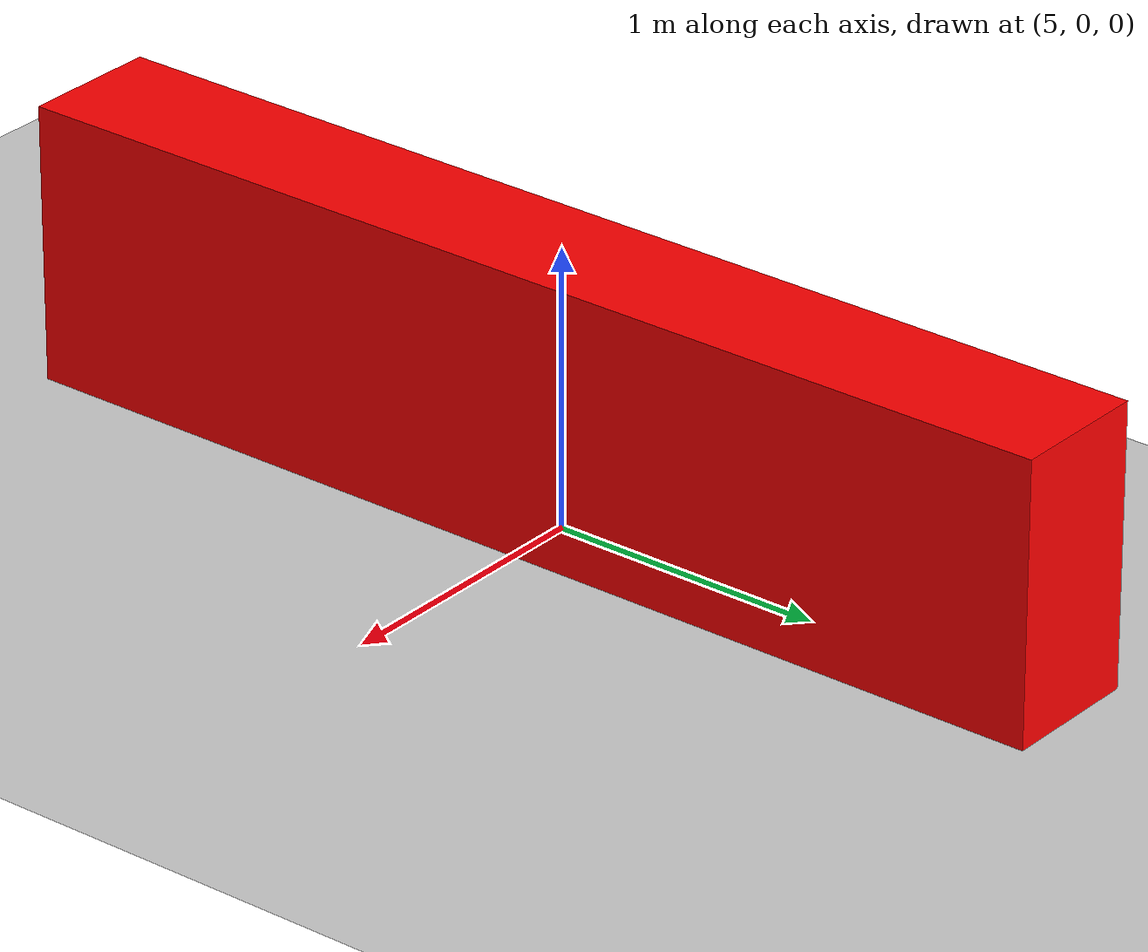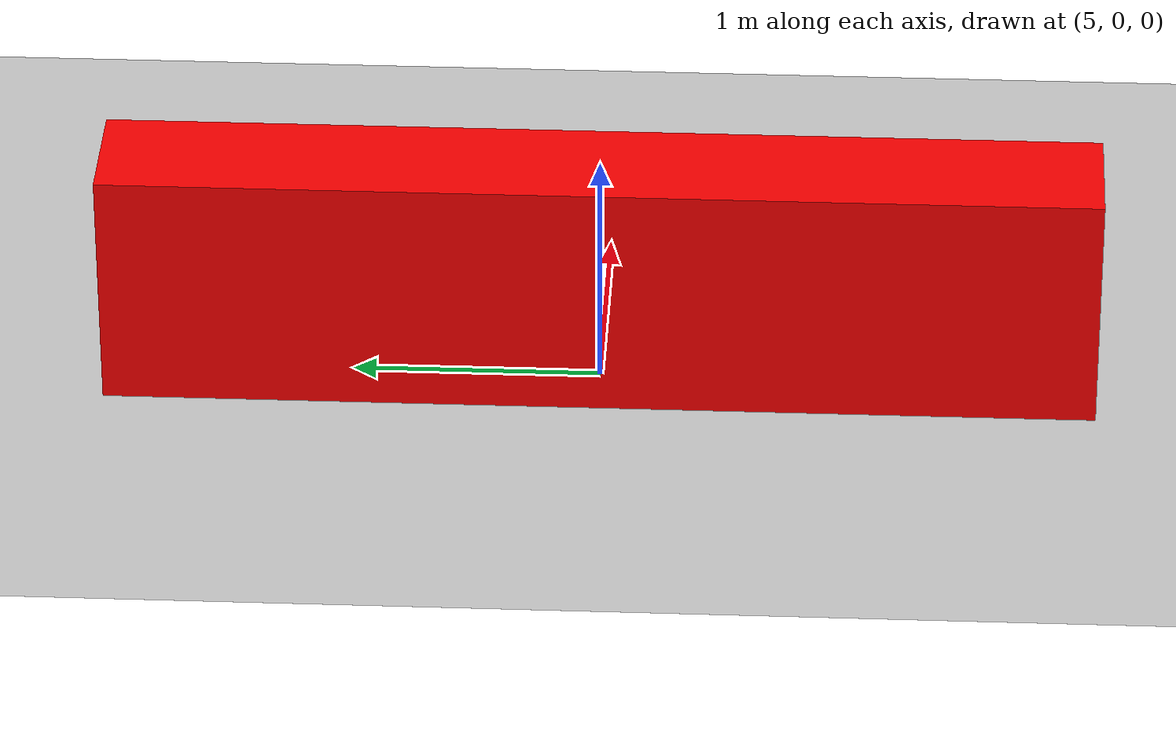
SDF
<?xml version="1.0" ?>
<sdf version="1.11">
  <world name="ex04_obstacle_world">
    <!-- Системы Gazebo Harmonic -->
    <plugin
      filename="gz-sim-scene-manager-system"
      name="gz::sim::systems::SceneManager">
      <render_engine>ogre2</render_engine>
      <background_color>0.2 0.2 0.2</background_color>
      <ambient_light>0.8 0.8 0.8</ambient_light>
      <shadows>false</shadows>
    </plugin>

    <plugin
      filename="gz-sim-sensors-system"
      name="gz::sim::systems::Sensors">
      <render_engine>ogre2</render_engine>
    </plugin>

    <plugin
      filename="gz-sim-imu-system"
      name="gz::sim::systems::Imu">
    </plugin>

    <plugin
      filename="gz-sim-physics-system"
      name="gz::sim::systems::Physics">
    </plugin>

    <plugin
      filename="gz-sim-user-commands-system"
      name="gz::sim::systems::UserCommands">
    </plugin>

    <plugin
      filename="gz-sim-scene-broadcaster-system"
      name="gz::sim::systems::SceneBroadcaster">
    </plugin>

    <light type="directional" name="sun">
      <cast_shadows>true</cast_shadows>
      <pose>0 0 10 0 0 0</pose>
      <diffuse>0.8 0.8 0.8 1</diffuse>
      <specular>0.2 0.2 0.2 1</specular>
      <attenuation>
        <range>1000</range>
        <constant>0.9</constant>
        <linear>0.01</linear>
        <quadratic>0.001</quadratic>
      </attenuation>
      <direction>-0.5 0.1 -0.9</direction>
    </light>

    <!-- Пол -->
    <model name="ground_plane">
      <static>true</static>
      <link name="link">
        <collision name="collision">
          <geometry>
            <plane>
              <normal>0 0 1</normal>
            </plane>
          </geometry>
        </collision>
        <visual name="visual">
          <geometry>
            <plane>
              <normal>0 0 1</normal>
            </plane>
          </geometry>
          <material>
            <ambient>0.8 0.8 0.8 1</ambient>
            <diffuse>0.8 0.8 0.8 1</diffuse>
            <specular>0.8 0.8 0.8 1</specular>
          </material>
        </visual>
      </link>
    </model>

    <!-- Большое препятствие прямо перед роботом на расстоянии 5 метров -->
    <model name="obstacle_wall">
      <pose>5 0 0.5 0 0 0</pose>  <!-- 5 метров вперед -->
      <link name="link">
        <collision name="collision">
          <geometry>
            <box>
              <size>0.5 4.0 1.0</size>  <!-- Тонкая стена шириной 4м, высотой 1м -->
            </box>
          </geometry>
        </collision>
        <visual name="visual">
          <geometry>
            <box>
              <size>0.5 4.0 1.0</size>
            </box>
          </geometry>
          <material>
            <ambient>1 0 0 1</ambient>
            <diffuse>1 0 0 1</diffuse>
            <specular>0.1 0.1 0.1 1</specular>
          </material>
        </visual>
      </link>
    </model>

  </world>
</sdf>
